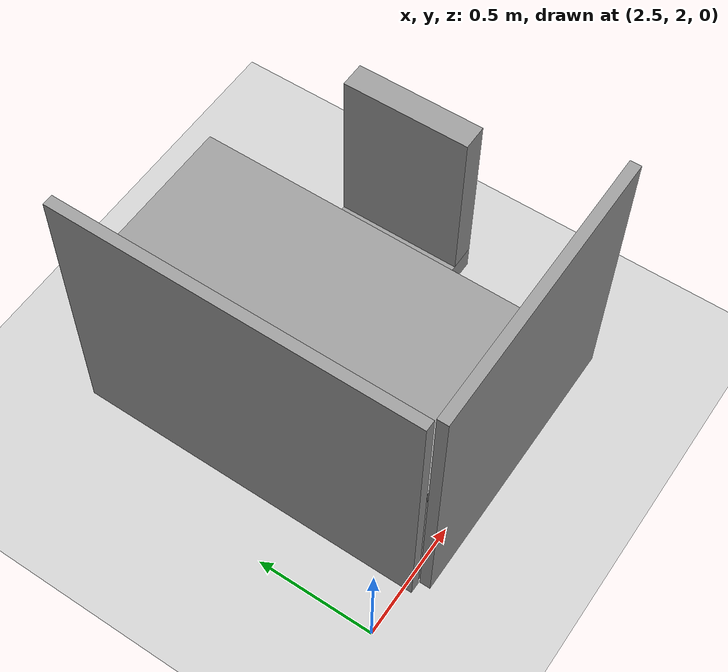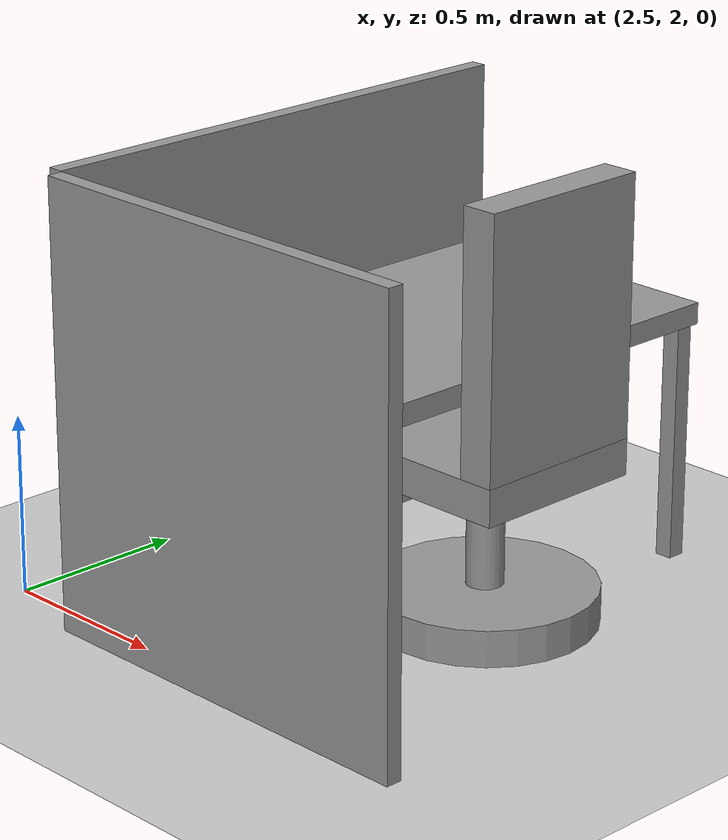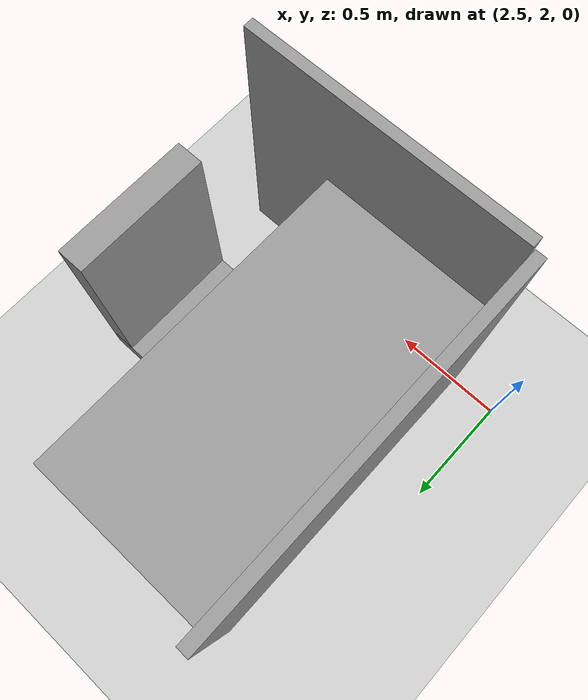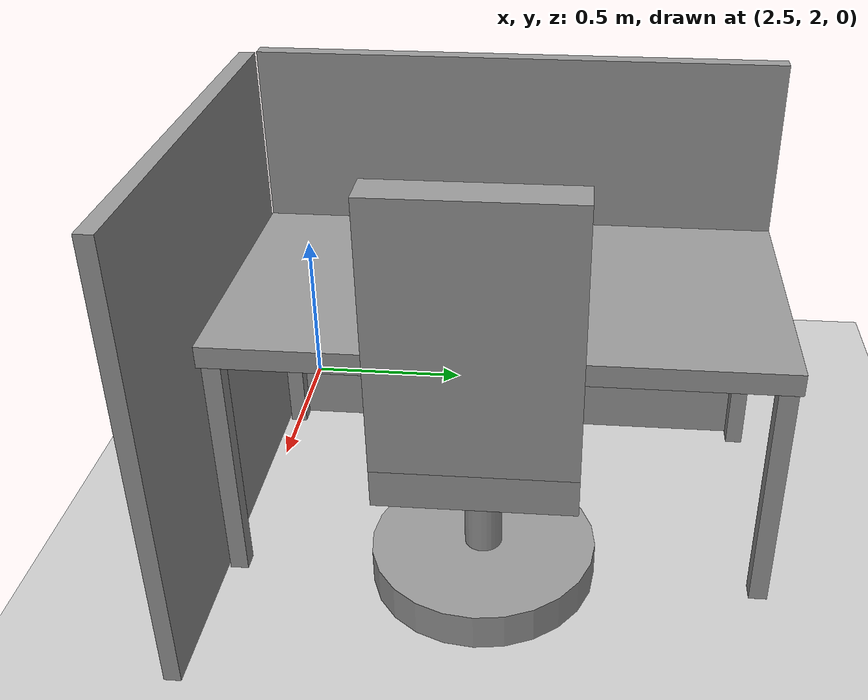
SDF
<sdf version="1.6">
 <world name="default">
  <model name="ground_plane">
   <static>1</static>
   <link name="link">
    <collision name="collision">
     <geometry><plane><normal>0 0 1</normal><size>100 100</size></plane></geometry>
     <surface><friction><ode><mu>100</mu><mu2>50</mu2></ode></friction></surface>
    </collision>
    <visual name="visual">
     <cast_shadows>0</cast_shadows>
     <geometry><plane><normal>0 0 1</normal><size>100 100</size></plane></geometry>
     <material>
      <script><uri>file://media/materials/scripts/gazebo.material</uri><name>Gazebo/Grey</name></script>
     </material>
    </visual>
   </link>
  </model>
  <model name="L8401_desk_clone">
   <link name="link_0">
    <pose>0.358907 -0.716347 -0.07 0 -0 3.14159</pose>
    <inertial>
     <mass>0.00540124</mass>
     <inertia>
      <ixx>0.00024509</ixx>
      <ixy>0</ixy>
      <ixz>0</ixz>
      <iyy>0.00024438</iyy>
      <iyz>0</iyz>
      <izz>6.68e-06</izz>
     </inertia>
    </inertial>
    <visual name="visual">
     <geometry><box><size>0.05 0.05 0.7</size></box></geometry>
     <material>
      <lighting>1</lighting>
      <script><uri>file://media/materials/scripts/gazebo.material</uri><name>Gazebo/Grey</name></script>
      <ambient>0.3 0.3 0.3 1</ambient>
      <diffuse>0.7 0.7 0.7 1</diffuse>
      <specular>0.01 0.01 0.01 1</specular>
      <emissive>0 0 0 1</emissive>
      <shader type="vertex"><normal_map>__default__</normal_map></shader>
     </material>
    </visual>
    <collision name="collision">
     <geometry><box><size>0.05 0.05 0.7</size></box></geometry>
     <surface>
      <friction>
       <ode><mu>1</mu><mu2>1</mu2><fdir1>0 0 0</fdir1><slip1>0</slip1><slip2>0</slip2></ode>
       <torsional>
        <coefficient>1</coefficient>
        <patch_radius>0</patch_radius>
        <surface_radius>0</surface_radius>
        <use_patch_radius>1</use_patch_radius>
        <ode><slip>0</slip></ode>
       </torsional>
      </friction>
      <bounce><restitution_coefficient>0</restitution_coefficient><threshold>1e+06</threshold></bounce>
      <contact>
       <collide_without_contact>0</collide_without_contact>
       <collide_without_contact_bitmask>1</collide_without_contact_bitmask>
       <collide_bitmask>1</collide_bitmask>
       <ode>
        <soft_cfm>0</soft_cfm>
        <soft_erp>0.2</soft_erp>
        <kp>1e+13</kp>
        <kd>1</kd>
        <max_vel>0.01</max_vel>
        <min_depth>0</min_depth>
       </ode>
       <bullet>
        <split_impulse>1</split_impulse>
        <split_impulse_penetration_threshold>-0.01</split_impulse_penetration_threshold>
        <soft_cfm>0</soft_cfm>
        <soft_erp>0.2</soft_erp>
        <kp>1e+13</kp>
        <kd>1</kd>
       </bullet>
      </contact>
     </surface>
    </collision>
   </link>
   <link name="link_0_clone">
    <pose>-0.368381 -0.716242 -0.07 0 -0 3.14159</pose>
    <inertial>
     <mass>0.00540124</mass>
     <inertia>
      <ixx>0.00024509</ixx>
      <ixy>0</ixy>
      <ixz>0</ixz>
      <iyy>0.00024438</iyy>
      <iyz>0</iyz>
      <izz>6.68e-06</izz>
     </inertia>
    </inertial>
    <visual name="visual">
     <geometry><box><size>0.05 0.05 0.7</size></box></geometry>
     <material>
      <lighting>1</lighting>
      <script><uri>file://media/materials/scripts/gazebo.material</uri><name>Gazebo/Grey</name></script>
      <ambient>0.3 0.3 0.3 1</ambient>
      <diffuse>0.7 0.7 0.7 1</diffuse>
      <specular>0.01 0.01 0.01 1</specular>
      <emissive>0 0 0 1</emissive>
      <shader type="vertex"><normal_map>__default__</normal_map></shader>
     </material>
    </visual>
    <collision name="collision">
     <geometry><box><size>0.05 0.05 0.7</size></box></geometry>
     <surface>
      <friction>
       <ode><mu>1</mu><mu2>1</mu2><fdir1>0 0 0</fdir1><slip1>0</slip1><slip2>0</slip2></ode>
       <torsional>
        <coefficient>1</coefficient>
        <patch_radius>0</patch_radius>
        <surface_radius>0</surface_radius>
        <use_patch_radius>1</use_patch_radius>
        <ode><slip>0</slip></ode>
       </torsional>
      </friction>
      <bounce><restitution_coefficient>0</restitution_coefficient><threshold>1e+06</threshold></bounce>
      <contact>
       <collide_without_contact>0</collide_without_contact>
       <collide_without_contact_bitmask>1</collide_without_contact_bitmask>
       <collide_bitmask>1</collide_bitmask>
       <ode>
        <soft_cfm>0</soft_cfm>
        <soft_erp>0.2</soft_erp>
        <kp>1e+13</kp>
        <kd>1</kd>
        <max_vel>0.01</max_vel>
        <min_depth>0</min_depth>
       </ode>
       <bullet>
        <split_impulse>1</split_impulse>
        <split_impulse_penetration_threshold>-0.01</split_impulse_penetration_threshold>
        <soft_cfm>0</soft_cfm>
        <soft_erp>0.2</soft_erp>
        <kp>1e+13</kp>
        <kd>1</kd>
       </bullet>
      </contact>
     </surface>
    </collision>
   </link>
   <link name="link_0_clone_0">
    <pose>-0.368174 0.719141 -0.07 0 -0 3.14159</pose>
    <inertial>
     <mass>0.00540124</mass>
     <inertia>
      <ixx>0.00024509</ixx>
      <ixy>0</ixy>
      <ixz>0</ixz>
      <iyy>0.00024438</iyy>
      <iyz>0</iyz>
      <izz>6.68e-06</izz>
     </inertia>
    </inertial>
    <visual name="visual">
     <geometry><box><size>0.05 0.05 0.7</size></box></geometry>
     <material>
      <lighting>1</lighting>
      <script><uri>file://media/materials/scripts/gazebo.material</uri><name>Gazebo/Grey</name></script>
      <ambient>0.3 0.3 0.3 1</ambient>
      <diffuse>0.7 0.7 0.7 1</diffuse>
      <specular>0.01 0.01 0.01 1</specular>
      <emissive>0 0 0 1</emissive>
      <shader type="vertex"><normal_map>__default__</normal_map></shader>
     </material>
    </visual>
    <collision name="collision">
     <geometry><box><size>0.05 0.05 0.7</size></box></geometry>
     <surface>
      <friction>
       <ode><mu>1</mu><mu2>1</mu2><fdir1>0 0 0</fdir1><slip1>0</slip1><slip2>0</slip2></ode>
       <torsional>
        <coefficient>1</coefficient>
        <patch_radius>0</patch_radius>
        <surface_radius>0</surface_radius>
        <use_patch_radius>1</use_patch_radius>
        <ode><slip>0</slip></ode>
       </torsional>
      </friction>
      <bounce><restitution_coefficient>0</restitution_coefficient><threshold>1e+06</threshold></bounce>
      <contact>
       <collide_without_contact>0</collide_without_contact>
       <collide_without_contact_bitmask>1</collide_without_contact_bitmask>
       <collide_bitmask>1</collide_bitmask>
       <ode>
        <soft_cfm>0</soft_cfm>
        <soft_erp>0.2</soft_erp>
        <kp>1e+13</kp>
        <kd>1</kd>
        <max_vel>0.01</max_vel>
        <min_depth>0</min_depth>
       </ode>
       <bullet>
        <split_impulse>1</split_impulse>
        <split_impulse_penetration_threshold>-0.01</split_impulse_penetration_threshold>
        <soft_cfm>0</soft_cfm>
        <soft_erp>0.2</soft_erp>
        <kp>1e+13</kp>
        <kd>1</kd>
       </bullet>
      </contact>
     </surface>
    </collision>
   </link>
   <link name="link_0_clone_1">
    <pose>0.359113 0.719037 -0.07 0 -0 3.14159</pose>
    <inertial>
     <mass>0.00540124</mass>
     <inertia>
      <ixx>0.00024509</ixx>
      <ixy>0</ixy>
      <ixz>0</ixz>
      <iyy>0.00024438</iyy>
      <iyz>0</iyz>
      <izz>6.68e-06</izz>
     </inertia>
    </inertial>
    <visual name="visual">
     <geometry><box><size>0.05 0.05 0.7</size></box></geometry>
     <material>
      <lighting>1</lighting>
      <script><uri>file://media/materials/scripts/gazebo.material</uri><name>Gazebo/Grey</name></script>
      <ambient>0.3 0.3 0.3 1</ambient>
      <diffuse>0.7 0.7 0.7 1</diffuse>
      <specular>0.01 0.01 0.01 1</specular>
      <emissive>0 0 0 1</emissive>
      <shader type="vertex"><normal_map>__default__</normal_map></shader>
     </material>
    </visual>
    <collision name="collision">
     <geometry><box><size>0.05 0.05 0.7</size></box></geometry>
     <surface>
      <friction>
       <ode><mu>1</mu><mu2>1</mu2><fdir1>0 0 0</fdir1><slip1>0</slip1><slip2>0</slip2></ode>
       <torsional>
        <coefficient>1</coefficient>
        <patch_radius>0</patch_radius>
        <surface_radius>0</surface_radius>
        <use_patch_radius>1</use_patch_radius>
        <ode><slip>0</slip></ode>
       </torsional>
      </friction>
      <bounce><restitution_coefficient>0</restitution_coefficient><threshold>1e+06</threshold></bounce>
      <contact>
       <collide_without_contact>0</collide_without_contact>
       <collide_without_contact_bitmask>1</collide_without_contact_bitmask>
       <collide_bitmask>1</collide_bitmask>
       <ode>
        <soft_cfm>0</soft_cfm>
        <soft_erp>0.2</soft_erp>
        <kp>1e+13</kp>
        <kd>1</kd>
        <max_vel>0.01</max_vel>
        <min_depth>0</min_depth>
       </ode>
       <bullet>
        <split_impulse>1</split_impulse>
        <split_impulse_penetration_threshold>-0.01</split_impulse_penetration_threshold>
        <soft_cfm>0</soft_cfm>
        <soft_erp>0.2</soft_erp>
        <kp>1e+13</kp>
        <kd>1</kd>
       </bullet>
      </contact>
     </surface>
    </collision>
   </link>
   <link name="link_1">
    <pose>-6e-05 0.001672 0.28 0 -0 0</pose>
    <inertial>
     <mass>0.0467165</mass>
     <inertia>
      <ixx>0.00864379</ixx>
      <ixy>0</ixy>
      <ixz>0</ixz>
      <iyy>0.00285842</iyy>
      <iyz>0</iyz>
      <izz>0.0114918</izz>
     </inertia>
    </inertial>
    <visual name="visual">
     <geometry><box><size>0.8 1.5 0.06</size></box></geometry>
     <material>
      <lighting>1</lighting>
      <script><uri>file://media/materials/scripts/gazebo.material</uri><name>Gazebo/Grey</name></script>
      <ambient>0.3 0.3 0.3 1</ambient>
      <diffuse>0.7 0.7 0.7 1</diffuse>
      <specular>0.01 0.01 0.01 1</specular>
      <emissive>0 0 0 1</emissive>
      <shader type="vertex"><normal_map>__default__</normal_map></shader>
     </material>
    </visual>
    <collision name="collision">
     <geometry><box><size>0.8 1.5 0.06</size></box></geometry>
     <surface>
      <friction>
       <ode><mu>1</mu><mu2>1</mu2><fdir1>0 0 0</fdir1><slip1>0</slip1><slip2>0</slip2></ode>
       <torsional>
        <coefficient>1</coefficient>
        <patch_radius>0</patch_radius>
        <surface_radius>0</surface_radius>
        <use_patch_radius>1</use_patch_radius>
        <ode><slip>0</slip></ode>
       </torsional>
      </friction>
      <bounce><restitution_coefficient>0</restitution_coefficient><threshold>1e+06</threshold></bounce>
      <contact>
       <collide_without_contact>0</collide_without_contact>
       <collide_without_contact_bitmask>1</collide_without_contact_bitmask>
       <collide_bitmask>1</collide_bitmask>
       <ode>
        <soft_cfm>0</soft_cfm>
        <soft_erp>0.2</soft_erp>
        <kp>1e+13</kp>
        <kd>1</kd>
        <max_vel>0.01</max_vel>
        <min_depth>0</min_depth>
       </ode>
       <bullet>
        <split_impulse>1</split_impulse>
        <split_impulse_penetration_threshold>-0.01</split_impulse_penetration_threshold>
        <soft_cfm>0</soft_cfm>
        <soft_erp>0.2</soft_erp>
        <kp>1e+13</kp>
        <kd>1</kd>
       </bullet>
      </contact>
     </surface>
    </collision>
   </link>
   <joint name="link_1_JOINT_0" type="fixed">
    <parent>link_1</parent>
    <child>link_0</child>
    <pose>0 0 0 -0.01 -0.02 -0.01</pose>
    <physics>
     <ode><limit><cfm>0</cfm><erp>0.2</erp></limit><suspension><cfm>0</cfm><erp>0.2</erp></suspension></ode>
    </physics>
   </joint>
   <joint name="link_1_JOINT_1" type="fixed">
    <parent>link_1</parent>
    <child>link_0_clone</child>
    <physics>
     <ode><limit><cfm>0</cfm><erp>0.2</erp></limit><suspension><cfm>0</cfm><erp>0.2</erp></suspension></ode>
    </physics>
   </joint>
   <joint name="link_1_JOINT_2" type="fixed">
    <parent>link_1</parent>
    <child>link_0_clone_1</child>
    <physics>
     <ode><limit><cfm>0</cfm><erp>0.2</erp></limit><suspension><cfm>0</cfm><erp>0.2</erp></suspension></ode>
    </physics>
   </joint>
   <joint name="link_1_JOINT_3" type="fixed">
    <parent>link_1</parent>
    <child>link_0_clone_0</child>
    <physics>
     <ode><limit><cfm>0</cfm><erp>0.2</erp></limit><suspension><cfm>0</cfm><erp>0.2</erp></suspension></ode>
    </physics>
   </joint>
   <static>1</static>
   <pose>3.16329 2.71354 0.420005 6e-06 2e-06 -0.00312</pose>
  </model>
  <model name="L8401_panel_A_0">
   <link name="link_0">
    <inertial>
     <mass>1</mass>
     <inertia>
      <ixx>0.166667</ixx>
      <ixy>0</ixy>
      <ixz>0</ixz>
      <iyy>0.166667</iyy>
      <iyz>0</iyz>
      <izz>0.166667</izz>
     </inertia>
    </inertial>
    <visual name="visual">
     <geometry><box><size>1.2 0.045 1.23</size></box></geometry>
     <material>
      <lighting>1</lighting>
      <script><uri>file://media/materials/scripts/gazebo.material</uri><name>Gazebo/Grey</name></script>
      <ambient>0.3 0.3 0.3 1</ambient>
      <diffuse>0.7 0.7 0.7 1</diffuse>
      <specular>0.01 0.01 0.01 1</specular>
      <emissive>0 0 0 1</emissive>
      <shader type="vertex"><normal_map>__default__</normal_map></shader>
     </material>
    </visual>
    <collision name="collision">
     <geometry><box><size>1.2 0.045 1.23</size></box></geometry>
     <surface>
      <friction>
       <ode><mu>1</mu><mu2>1</mu2><fdir1>0 0 0</fdir1><slip1>0</slip1><slip2>0</slip2></ode>
       <torsional>
        <coefficient>1</coefficient>
        <patch_radius>0</patch_radius>
        <surface_radius>0</surface_radius>
        <use_patch_radius>1</use_patch_radius>
        <ode><slip>0</slip></ode>
       </torsional>
      </friction>
      <bounce><restitution_coefficient>0</restitution_coefficient><threshold>1e+06</threshold></bounce>
      <contact>
       <collide_without_contact>0</collide_without_contact>
       <collide_without_contact_bitmask>1</collide_without_contact_bitmask>
       <collide_bitmask>1</collide_bitmask>
       <ode>
        <soft_cfm>0</soft_cfm>
        <soft_erp>0.2</soft_erp>
        <kp>1e+13</kp>
        <kd>1</kd>
        <max_vel>0.01</max_vel>
        <min_depth>0</min_depth>
       </ode>
       <bullet>
        <split_impulse>1</split_impulse>
        <split_impulse_penetration_threshold>-0.01</split_impulse_penetration_threshold>
        <soft_cfm>0</soft_cfm>
        <soft_erp>0.2</soft_erp>
        <kp>1e+13</kp>
        <kd>1</kd>
       </bullet>
      </contact>
     </surface>
    </collision>
   </link>
   <static>1</static>
   <pose>3.36548 1.94169 0.615 7.6e-05 1.4e-05 -0.000888</pose>
  </model>
  <model name="L8401_panel_B_0_clone">
   <link name="link_0">
    <pose>0 0 0 0 -0 1.57</pose>
    <inertial>
     <mass>1</mass>
     <inertia>
      <ixx>0.166667</ixx>
      <ixy>0</ixy>
      <ixz>0</ixz>
      <iyy>0.166667</iyy>
      <iyz>0</iyz>
      <izz>0.166667</izz>
     </inertia>
    </inertial>
    <visual name="visual">
     <geometry><box><size>1.5 0.045 1.23</size></box></geometry>
     <material>
      <lighting>1</lighting>
      <script><uri>file://media/materials/scripts/gazebo.material</uri><name>Gazebo/Grey</name></script>
      <ambient>0.3 0.3 0.3 1</ambient>
      <diffuse>0.7 0.7 0.7 1</diffuse>
      <specular>0.01 0.01 0.01 1</specular>
      <emissive>0 0 0 1</emissive>
      <shader type="vertex"><normal_map>__default__</normal_map></shader>
     </material>
    </visual>
    <collision name="collision">
     <geometry><box><size>1.5 0.045 1.23</size></box></geometry>
     <surface>
      <friction>
       <ode><mu>1</mu><mu2>1</mu2><fdir1>0 0 0</fdir1><slip1>0</slip1><slip2>0</slip2></ode>
       <torsional>
        <coefficient>1</coefficient>
        <patch_radius>0</patch_radius>
        <surface_radius>0</surface_radius>
        <use_patch_radius>1</use_patch_radius>
        <ode><slip>0</slip></ode>
       </torsional>
      </friction>
      <bounce><restitution_coefficient>0</restitution_coefficient><threshold>1e+06</threshold></bounce>
      <contact>
       <collide_without_contact>0</collide_without_contact>
       <collide_without_contact_bitmask>1</collide_without_contact_bitmask>
       <collide_bitmask>1</collide_bitmask>
       <ode>
        <soft_cfm>0</soft_cfm>
        <soft_erp>0.2</soft_erp>
        <kp>1e+13</kp>
        <kd>1</kd>
        <max_vel>0.01</max_vel>
        <min_depth>0</min_depth>
       </ode>
       <bullet>
        <split_impulse>1</split_impulse>
        <split_impulse_penetration_threshold>-0.01</split_impulse_penetration_threshold>
        <soft_cfm>0</soft_cfm>
        <soft_erp>0.2</soft_erp>
        <kp>1e+13</kp>
        <kd>1</kd>
       </bullet>
      </contact>
     </surface>
    </collision>
   </link>
   <static>1</static>
   <pose>2.73802 2.7168 0.61499 -0 2e-06 -0.0022</pose>
  </model>
  <model name="L8401_chair_clone_clone">
   <link name="link">
    <pose>0 -0 0.25 0 -0 0</pose>
    <inertial>
     <mass>1</mass>
     <inertia><ixx>0.145833</ixx><ixy>0</ixy><ixz>0</ixz><iyy>0.145833</iyy><iyz>0</iyz><izz>0.125</izz></inertia>
    </inertial>
    <visual name="visual">
     <geometry><cylinder><radius>0.05</radius><length>0.3</length></cylinder></geometry>
     <material>
      <script><name>Gazebo/Grey</name><uri>file://media/materials/scripts/gazebo.material</uri></script>
      <ambient>0.3 0.3 0.3 1</ambient>
      <diffuse>0.7 0.7 0.7 1</diffuse>
      <specular>0.01 0.01 0.01 1</specular>
      <emissive>0 0 0 1</emissive>
      <shader type="vertex"><normal_map>__default__</normal_map></shader>
     </material>
    </visual>
    <collision name="collision">
     <geometry><cylinder><radius>0.05</radius><length>0.3</length></cylinder></geometry>
     <surface>
      <friction>
       <ode><mu>1</mu><mu2>1</mu2><fdir1>0 0 0</fdir1><slip1>0</slip1><slip2>0</slip2></ode>
       <torsional>
        <coefficient>1</coefficient>
        <patch_radius>0</patch_radius>
        <surface_radius>0</surface_radius>
        <use_patch_radius>1</use_patch_radius>
        <ode><slip>0</slip></ode>
       </torsional>
      </friction>
      <bounce><restitution_coefficient>0</restitution_coefficient><threshold>1e+06</threshold></bounce>
      <contact>
       <collide_without_contact>0</collide_without_contact>
       <collide_without_contact_bitmask>1</collide_without_contact_bitmask>
       <collide_bitmask>1</collide_bitmask>
       <ode>
        <soft_cfm>0</soft_cfm>
        <soft_erp>0.2</soft_erp>
        <kp>1e+13</kp>
        <kd>1</kd>
        <max_vel>0.01</max_vel>
        <min_depth>0</min_depth>
       </ode>
       <bullet>
        <split_impulse>1</split_impulse>
        <split_impulse_penetration_threshold>-0.01</split_impulse_penetration_threshold>
        <soft_cfm>0</soft_cfm>
        <soft_erp>0.2</soft_erp>
        <kp>1e+13</kp>
        <kd>1</kd>
       </bullet>
      </contact>
     </surface>
    </collision>
   </link>
   <link name="link_0">
    <pose>0 -0 0.45 0 -0 0</pose>
    <inertial>
     <mass>1</mass>
     <inertia>
      <ixx>0.166667</ixx>
      <ixy>0</ixy>
      <ixz>0</ixz>
      <iyy>0.166667</iyy>
      <iyz>0</iyz>
      <izz>0.166667</izz>
     </inertia>
    </inertial>
    <visual name="visual">
     <geometry><box><size>0.5 0.5 0.1</size></box></geometry>
     <material>
      <lighting>1</lighting>
      <script><uri>file://media/materials/scripts/gazebo.material</uri><name>Gazebo/Grey</name></script>
      <ambient>0.3 0.3 0.3 1</ambient>
      <diffuse>0.7 0.7 0.7 1</diffuse>
      <specular>0.01 0.01 0.01 1</specular>
      <emissive>0 0 0 1</emissive>
      <shader type="vertex"><normal_map>__default__</normal_map></shader>
     </material>
    </visual>
    <collision name="collision">
     <geometry><box><size>0.5 0.5 0.1</size></box></geometry>
     <surface>
      <friction>
       <ode><mu>1</mu><mu2>1</mu2><fdir1>0 0 0</fdir1><slip1>0</slip1><slip2>0</slip2></ode>
       <torsional>
        <coefficient>1</coefficient>
        <patch_radius>0</patch_radius>
        <surface_radius>0</surface_radius>
        <use_patch_radius>1</use_patch_radius>
        <ode><slip>0</slip></ode>
       </torsional>
      </friction>
      <bounce><restitution_coefficient>0</restitution_coefficient><threshold>1e+06</threshold></bounce>
      <contact>
       <collide_without_contact>0</collide_without_contact>
       <collide_without_contact_bitmask>1</collide_without_contact_bitmask>
       <collide_bitmask>1</collide_bitmask>
       <ode>
        <soft_cfm>0</soft_cfm>
        <soft_erp>0.2</soft_erp>
        <kp>1e+13</kp>
        <kd>1</kd>
        <max_vel>0.01</max_vel>
        <min_depth>0</min_depth>
       </ode>
       <bullet>
        <split_impulse>1</split_impulse>
        <split_impulse_penetration_threshold>-0.01</split_impulse_penetration_threshold>
        <soft_cfm>0</soft_cfm>
        <soft_erp>0.2</soft_erp>
        <kp>1e+13</kp>
        <kd>1</kd>
       </bullet>
      </contact>
     </surface>
    </collision>
   </link>
   <link name="link_1">
    <pose>0 -0 0.05 0 -0 0</pose>
    <inertial>
     <mass>1</mass>
     <inertia><ixx>0.145833</ixx><ixy>0</ixy><ixz>0</ixz><iyy>0.145833</iyy><iyz>0</iyz><izz>0.125</izz></inertia>
    </inertial>
    <visual name="visual">
     <geometry><cylinder><radius>0.3</radius><length>0.1</length></cylinder></geometry>
     <material>
      <lighting>1</lighting>
      <script><uri>file://media/materials/scripts/gazebo.material</uri><name>Gazebo/Grey</name></script>
      <ambient>0.3 0.3 0.3 1</ambient>
      <diffuse>0.7 0.7 0.7 1</diffuse>
      <specular>0.01 0.01 0.01 1</specular>
      <emissive>0 0 0 1</emissive>
      <shader type="vertex"><normal_map>__default__</normal_map></shader>
     </material>
    </visual>
    <collision name="collision">
     <geometry><cylinder><radius>0.3</radius><length>0.1</length></cylinder></geometry>
     <surface>
      <friction>
       <ode><mu>1</mu><mu2>1</mu2><fdir1>0 0 0</fdir1><slip1>0</slip1><slip2>0</slip2></ode>
       <torsional>
        <coefficient>1</coefficient>
        <patch_radius>0</patch_radius>
        <surface_radius>0</surface_radius>
        <use_patch_radius>1</use_patch_radius>
        <ode><slip>0</slip></ode>
       </torsional>
      </friction>
      <bounce><restitution_coefficient>0</restitution_coefficient><threshold>1e+06</threshold></bounce>
      <contact>
       <collide_without_contact>0</collide_without_contact>
       <collide_without_contact_bitmask>1</collide_without_contact_bitmask>
       <collide_bitmask>1</collide_bitmask>
       <ode>
        <soft_cfm>0</soft_cfm>
        <soft_erp>0.2</soft_erp>
        <kp>1e+13</kp>
        <kd>1</kd>
        <max_vel>0.01</max_vel>
        <min_depth>0</min_depth>
       </ode>
       <bullet>
        <split_impulse>1</split_impulse>
        <split_impulse_penetration_threshold>-0.01</split_impulse_penetration_threshold>
        <soft_cfm>0</soft_cfm>
        <soft_erp>0.2</soft_erp>
        <kp>1e+13</kp>
        <kd>1</kd>
       </bullet>
      </contact>
     </surface>
    </collision>
   </link>
   <link name="link_2">
    <pose>-0.2 0 0.85 0 -0 0</pose>
    <inertial>
     <mass>1</mass>
     <inertia>
      <ixx>0.166667</ixx>
      <ixy>0</ixy>
      <ixz>0</ixz>
      <iyy>0.166667</iyy>
      <iyz>0</iyz>
      <izz>0.166667</izz>
     </inertia>
    </inertial>
    <visual name="visual">
     <geometry><box><size>0.1 0.5 0.7</size></box></geometry>
     <material>
      <lighting>1</lighting>
      <script><uri>file://media/materials/scripts/gazebo.material</uri><name>Gazebo/Grey</name></script>
      <ambient>0.3 0.3 0.3 1</ambient>
      <diffuse>0.7 0.7 0.7 1</diffuse>
      <specular>0.01 0.01 0.01 1</specular>
      <emissive>0 0 0 1</emissive>
      <shader type="vertex"><normal_map>__default__</normal_map></shader>
     </material>
    </visual>
    <collision name="collision">
     <geometry><box><size>0.1 0.5 0.7</size></box></geometry>
     <surface>
      <friction>
       <ode><mu>1</mu><mu2>1</mu2><fdir1>0 0 0</fdir1><slip1>0</slip1><slip2>0</slip2></ode>
       <torsional>
        <coefficient>1</coefficient>
        <patch_radius>0</patch_radius>
        <surface_radius>0</surface_radius>
        <use_patch_radius>1</use_patch_radius>
        <ode><slip>0</slip></ode>
       </torsional>
      </friction>
      <bounce><restitution_coefficient>0</restitution_coefficient><threshold>1e+06</threshold></bounce>
      <contact>
       <collide_without_contact>0</collide_without_contact>
       <collide_without_contact_bitmask>1</collide_without_contact_bitmask>
       <collide_bitmask>1</collide_bitmask>
       <ode>
        <soft_cfm>0</soft_cfm>
        <soft_erp>0.2</soft_erp>
        <kp>1e+13</kp>
        <kd>1</kd>
        <max_vel>0.01</max_vel>
        <min_depth>0</min_depth>
       </ode>
       <bullet>
        <split_impulse>1</split_impulse>
        <split_impulse_penetration_threshold>-0.01</split_impulse_penetration_threshold>
        <soft_cfm>0</soft_cfm>
        <soft_erp>0.2</soft_erp>
        <kp>1e+13</kp>
        <kd>1</kd>
       </bullet>
      </contact>
     </surface>
    </collision>
   </link>
   <joint name="link_0_JOINT_2" type="fixed">
    <parent>link_0</parent>
    <child>link_2</child>
    <physics>
     <ode><limit><cfm>0</cfm><erp>0.2</erp></limit><suspension><cfm>0</cfm><erp>0.2</erp></suspension></ode>
    </physics>
   </joint>
   <joint name="link_1_JOINT_0" type="fixed">
    <parent>link_1</parent>
    <child>link</child>
    <physics>
     <ode><limit><cfm>0</cfm><erp>0.2</erp></limit><suspension><cfm>0</cfm><erp>0.2</erp></suspension></ode>
    </physics>
   </joint>
   <joint name="link_JOINT_1" type="fixed">
    <parent>link</parent>
    <child>link_0</child>
    <physics>
     <ode><limit><cfm>0</cfm><erp>0.2</erp></limit><suspension><cfm>0</cfm><erp>0.2</erp></suspension></ode>
    </physics>
   </joint>
   <static>1</static>
   <pose>3.54052 2.68391 0.05 0 0 -3.13943</pose>
  </model>
 </world>
</sdf>
